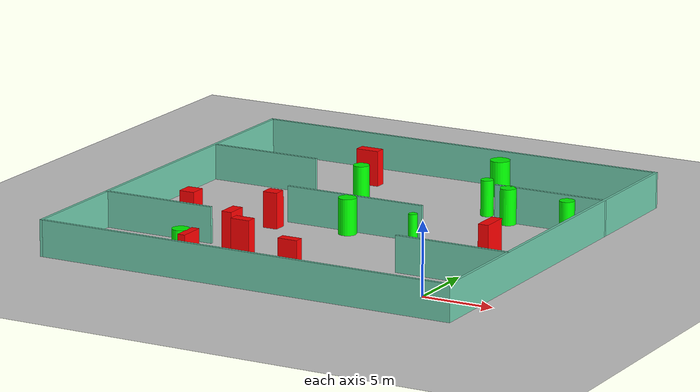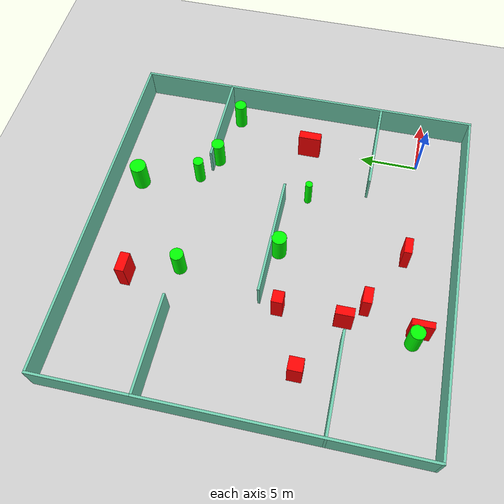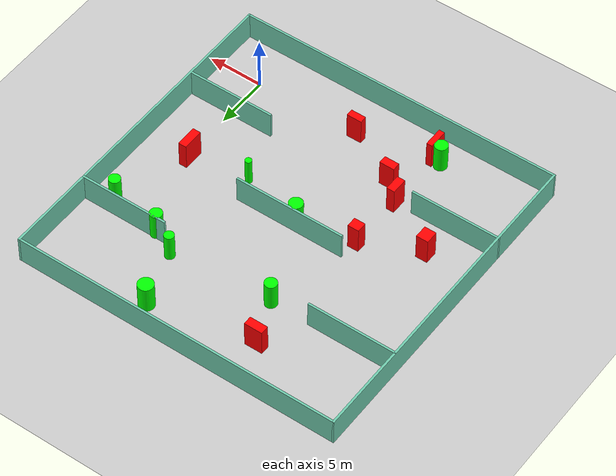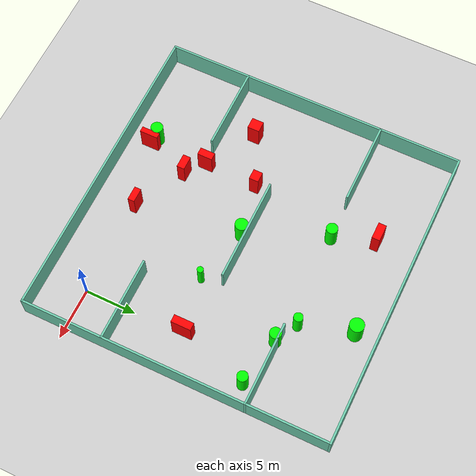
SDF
<sdf version="1.7">
 <world name="default">
  <light name="sun" type="directional">
   <pose>0 0 10 0 -0 0</pose>
   <diffuse>0.8 0.8 0.8 1</diffuse>
   <specular>0.2 0.2 0.2 1</specular>
   <attenuation>
    <range>1000</range>
    <constant>0.9</constant>
    <linear>0.01</linear>
    <quadratic>0.001</quadratic>
   </attenuation>
   <direction>-0.5 0.1 -0.9</direction>
   <spot><inner_angle>0</inner_angle><outer_angle>0</outer_angle><falloff>0</falloff></spot>
  </light>
  <model name="ground_plane">
   <static>1</static>
   <link name="link">
    <collision name="collision">
     <geometry><plane><normal>0 0 1</normal><size>100 100</size></plane></geometry>
     <surface>
      <contact><collide_bitmask>65535</collide_bitmask></contact>
      <friction><ode><mu>100</mu><mu2>50</mu2></ode></friction>
     </surface>
    </collision>
    <visual name="visual">
     <cast_shadows>0</cast_shadows>
     <geometry><plane><normal>0 0 1</normal><size>100 100</size></plane></geometry>
     <material>
      <script><uri>file://media/materials/scripts/gazebo.material</uri><name>Gazebo/Grey</name></script>
     </material>
    </visual>
   </link>
  </model>
  <gravity>0 0 -9.8</gravity>
  <magnetic_field>6e-06 2.3e-05 -4.2e-05</magnetic_field>
  <atmosphere type="adiabatic"/>
  <physics type="ode">
   <max_step_size>0.001</max_step_size>
   <real_time_factor>1</real_time_factor>
   <real_time_update_rate>1000</real_time_update_rate>
  </physics>
  <scene><ambient>0.4 0.4 0.4 1</ambient><background>0.7 0.7 0.7 1</background><shadows>1</shadows></scene>
  <spherical_coordinates>
   <surface_model>EARTH_WGS84</surface_model>
   <latitude_deg>0</latitude_deg>
   <longitude_deg>0</longitude_deg>
   <elevation>0</elevation>
   <heading_deg>0</heading_deg>
  </spherical_coordinates>
  <model name="my_base_walls">
   <link name="Wall_10">
    <collision name="Wall_10_Collision">
     <geometry><box><size>8.2 0.2 2.5</size></box></geometry>
     <pose>0 0 1.25 0 -0 0</pose>
    </collision>
    <visual name="Wall_10_Visual">
     <pose>0 0 1.25 0 -0 0</pose>
     <geometry><box><size>8.2 0.2 2.5</size></box></geometry>
     <material>
      <script><uri>file://media/materials/scripts/gazebo.material</uri><name>Gazebo/Grey</name></script>
      <ambient>0.435294 0.796078 0.67451 1</ambient>
     </material>
     <meta><layer>0</layer></meta>
    </visual>
    <pose>-11 -7 0 0 -0 0</pose>
   </link>
   <link name="Wall_12">
    <collision name="Wall_12_Collision">
     <geometry><box><size>8.2 0.2 2.5</size></box></geometry>
     <pose>0 0 1.25 0 -0 0</pose>
    </collision>
    <visual name="Wall_12_Visual">
     <pose>0 0 1.25 0 -0 0</pose>
     <geometry><box><size>8.2 0.2 2.5</size></box></geometry>
     <material>
      <script><uri>file://media/materials/scripts/gazebo.material</uri><name>Gazebo/Grey</name></script>
      <ambient>0.435294 0.796078 0.67451 1</ambient>
     </material>
     <meta><layer>0</layer></meta>
    </visual>
    <pose>-11 7 0 0 -0 0</pose>
   </link>
   <link name="Wall_14">
    <collision name="Wall_14_Collision">
     <geometry><box><size>8.2 0.2 2.5</size></box></geometry>
     <pose>0 0 1.25 0 -0 0</pose>
    </collision>
    <visual name="Wall_14_Visual">
     <pose>0 0 1.25 0 -0 0</pose>
     <geometry><box><size>8.2 0.2 2.5</size></box></geometry>
     <material>
      <script><uri>file://media/materials/scripts/gazebo.material</uri><name>Gazebo/Grey</name></script>
      <ambient>0.435294 0.796078 0.67451 1</ambient>
     </material>
     <meta><layer>0</layer></meta>
    </visual>
    <pose>11 7 0 0 -0 3.14159</pose>
   </link>
   <link name="Wall_16">
    <collision name="Wall_16_Collision">
     <geometry><box><size>10.2 0.2 2.5</size></box></geometry>
     <pose>0 0 1.25 0 -0 0</pose>
    </collision>
    <visual name="Wall_16_Visual">
     <pose>0 0 1.25 0 -0 0</pose>
     <geometry><box><size>10.2 0.2 2.5</size></box></geometry>
     <material>
      <script><uri>file://media/materials/scripts/gazebo.material</uri><name>Gazebo/Grey</name></script>
      <ambient>0.435294 0.796078 0.67451 1</ambient>
     </material>
     <meta><layer>0</layer></meta>
    </visual>
    <pose>0 0 0 0 -0 3.14159</pose>
   </link>
   <link name="Wall_2">
    <collision name="Wall_2_Collision">
     <geometry><box><size>30.2 0.2 2.5</size></box></geometry>
     <pose>0 0 1.25 0 -0 0</pose>
    </collision>
    <visual name="Wall_2_Visual">
     <pose>0 0 1.25 0 -0 0</pose>
     <geometry><box><size>30.2 0.2 2.5</size></box></geometry>
     <material>
      <script><uri>file://media/materials/scripts/gazebo.material</uri><name>Gazebo/Grey</name></script>
      <ambient>0.435294 0.796078 0.67451 1</ambient>
     </material>
     <meta><layer>0</layer></meta>
    </visual>
    <pose>0 -15 0 0 -0 3.14159</pose>
   </link>
   <link name="Wall_3">
    <collision name="Wall_3_Collision">
     <geometry><box><size>30.2 0.2 2.5</size></box></geometry>
     <pose>0 0 1.25 0 -0 0</pose>
    </collision>
    <visual name="Wall_3_Visual">
     <pose>0 0 1.25 0 -0 0</pose>
     <geometry><box><size>30.2 0.2 2.5</size></box></geometry>
     <material>
      <script><uri>file://media/materials/scripts/gazebo.material</uri><name>Gazebo/Grey</name></script>
      <ambient>0.435294 0.796078 0.67451 1</ambient>
     </material>
     <meta><layer>0</layer></meta>
    </visual>
    <pose>-15 0 0 0 -0 1.5708</pose>
   </link>
   <link name="Wall_4">
    <collision name="Wall_4_Collision">
     <geometry><box><size>30.2 0.2 2.5</size></box></geometry>
     <pose>0 0 1.25 0 -0 0</pose>
    </collision>
    <visual name="Wall_4_Visual">
     <pose>0 0 1.25 0 -0 0</pose>
     <geometry><box><size>30.2 0.2 2.5</size></box></geometry>
     <material>
      <script><uri>file://media/materials/scripts/gazebo.material</uri><name>Gazebo/Grey</name></script>
      <ambient>0.435294 0.796078 0.67451 1</ambient>
     </material>
     <meta><layer>0</layer></meta>
    </visual>
    <pose>0 15 0 0 -0 0</pose>
   </link>
   <link name="Wall_6">
    <collision name="Wall_6_Collision">
     <geometry><box><size>30.2 0.2 2.5</size></box></geometry>
     <pose>0 0 1.25 0 -0 0</pose>
    </collision>
    <visual name="Wall_6_Visual">
     <pose>0 0 1.25 0 -0 0</pose>
     <geometry><box><size>30.2 0.2 2.5</size></box></geometry>
     <material>
      <script><uri>file://media/materials/scripts/gazebo.material</uri><name>Gazebo/Grey</name></script>
      <ambient>0.435294 0.796078 0.67451 1</ambient>
     </material>
     <meta><layer>0</layer></meta>
    </visual>
    <pose>15 0 0 0 -0 1.5708</pose>
   </link>
   <link name="Wall_8">
    <collision name="Wall_8_Collision">
     <geometry><box><size>8.2 0.2 2.5</size></box></geometry>
     <pose>0 0 1.25 0 -0 0</pose>
    </collision>
    <visual name="Wall_8_Visual">
     <pose>0 0 1.25 0 -0 0</pose>
     <geometry><box><size>8.2 0.2 2.5</size></box></geometry>
     <material>
      <script><uri>file://media/materials/scripts/gazebo.material</uri><name>Gazebo/Grey</name></script>
      <ambient>0.435294 0.796078 0.67451 1</ambient>
     </material>
     <meta><layer>0</layer></meta>
    </visual>
    <pose>11 -7 0 0 -0 3.14159</pose>
   </link>
   <static>1</static>
   <pose>-11 11 0 0 -0 0</pose>
  </model>
  <model name="cylinder1">
   <static>1</static>
   <link name="link">
    <inertial>
     <mass>1</mass>
     <inertia><ixx>0.5</ixx><ixy>0</ixy><ixz>0</ixz><iyy>0.5</iyy><iyz>0</iyz><izz>1</izz></inertia>
    </inertial>
    <collision name="collision">
     <geometry><cylinder><radius>0.44315635912774565</radius><length>2.5</length></cylinder></geometry>
    </collision>
    <visual name="visual">
     <geometry><cylinder><radius>0.44315635912774565</radius><length>2.5</length></cylinder></geometry>
     <material>
      <ambient>0 1 0 1</ambient>
      <diffuse>0 1 0 1</diffuse>
      <specular>0.1 0.1 0.1 1</specular>
      <emissive>0 0 0 0</emissive>
     </material>
    </visual>
   </link>
   <pose>-5.148137849979319 18.847649474996906 1.25 0 0 0</pose>
  </model>
  <model name="cylinder2">
   <static>1</static>
   <link name="link">
    <inertial>
     <mass>1</mass>
     <inertia><ixx>0.5</ixx><ixy>0</ixy><ixz>0</ixz><iyy>0.5</iyy><iyz>0</iyz><izz>1</izz></inertia>
    </inertial>
    <collision name="collision">
     <geometry><cylinder><radius>0.5210041241242489</radius><length>2.5</length></cylinder></geometry>
    </collision>
    <visual name="visual">
     <geometry><cylinder><radius>0.5210041241242489</radius><length>2.5</length></cylinder></geometry>
     <material>
      <ambient>0 1 0 1</ambient>
      <diffuse>0 1 0 1</diffuse>
      <specular>0.1 0.1 0.1 1</specular>
      <emissive>0 0 0 0</emissive>
     </material>
    </visual>
   </link>
   <pose>1.8893018856757813 16.745328308252624 1.25 0 0 0</pose>
  </model>
  <model name="cylinder3">
   <static>1</static>
   <link name="link">
    <inertial>
     <mass>1</mass>
     <inertia><ixx>0.5</ixx><ixy>0</ixy><ixz>0</ixz><iyy>0.5</iyy><iyz>0</iyz><izz>1</izz></inertia>
    </inertial>
    <collision name="collision">
     <geometry><cylinder><radius>0.5603543382615417</radius><length>2.5</length></cylinder></geometry>
    </collision>
    <visual name="visual">
     <geometry><cylinder><radius>0.5603543382615417</radius><length>2.5</length></cylinder></geometry>
     <material>
      <ambient>0 1 0 1</ambient>
      <diffuse>0 1 0 1</diffuse>
      <specular>0.1 0.1 0.1 1</specular>
      <emissive>0 0 0 0</emissive>
     </material>
    </visual>
   </link>
   <pose>-2.946954024509889 17.655970204674578 1.25 0 0 0</pose>
  </model>
  <model name="cylinder4">
   <static>1</static>
   <link name="link">
    <inertial>
     <mass>1</mass>
     <inertia><ixx>0.5</ixx><ixy>0</ixy><ixz>0</ixz><iyy>0.5</iyy><iyz>0</iyz><izz>1</izz></inertia>
    </inertial>
    <collision name="collision">
     <geometry><cylinder><radius>0.3042869393155815</radius><length>2.5</length></cylinder></geometry>
    </collision>
    <visual name="visual">
     <geometry><cylinder><radius>0.3042869393155815</radius><length>2.5</length></cylinder></geometry>
     <material>
      <ambient>0 1 0 1</ambient>
      <diffuse>0 1 0 1</diffuse>
      <specular>0.1 0.1 0.1 1</specular>
      <emissive>0 0 0 0</emissive>
     </material>
    </visual>
   </link>
   <pose>-5.513651965818159 8.972301004513822 1.25 0 0 0</pose>
  </model>
  <model name="cylinder5">
   <static>1</static>
   <link name="link">
    <inertial>
     <mass>1</mass>
     <inertia><ixx>0.5</ixx><ixy>0</ixy><ixz>0</ixz><iyy>0.5</iyy><iyz>0</iyz><izz>1</izz></inertia>
    </inertial>
    <collision name="collision">
     <geometry><cylinder><radius>0.5943857741182548</radius><length>2.5</length></cylinder></geometry>
    </collision>
    <visual name="visual">
     <geometry><cylinder><radius>0.5943857741182548</radius><length>2.5</length></cylinder></geometry>
     <material>
      <ambient>0 1 0 1</ambient>
      <diffuse>0 1 0 1</diffuse>
      <specular>0.1 0.1 0.1 1</specular>
      <emissive>0 0 0 0</emissive>
     </material>
    </visual>
   </link>
   <pose>-16.983232214901406 -1.3928377386412056 1.25 0 0 0</pose>
  </model>
  <model name="cylinder6">
   <static>1</static>
   <link name="link">
    <inertial>
     <mass>1</mass>
     <inertia><ixx>0.5</ixx><ixy>0</ixy><ixz>0</ixz><iyy>0.5</iyy><iyz>0</iyz><izz>1</izz></inertia>
    </inertial>
    <collision name="collision">
     <geometry><cylinder><radius>0.6966178053316152</radius><length>2.5</length></cylinder></geometry>
    </collision>
    <visual name="visual">
     <geometry><cylinder><radius>0.6966178053316152</radius><length>2.5</length></cylinder></geometry>
     <material>
      <ambient>0 1 0 1</ambient>
      <diffuse>0 1 0 1</diffuse>
      <specular>0.1 0.1 0.1 1</specular>
      <emissive>0 0 0 0</emissive>
     </material>
    </visual>
   </link>
   <pose>-6.706656898554204 23.81360514092887 1.25 0 0 0</pose>
  </model>
  <model name="cylinder7">
   <static>1</static>
   <link name="link">
    <inertial>
     <mass>1</mass>
     <inertia><ixx>0.5</ixx><ixy>0</ixy><ixz>0</ixz><iyy>0.5</iyy><iyz>0</iyz><izz>1</izz></inertia>
    </inertial>
    <collision name="collision">
     <geometry><cylinder><radius>0.6278709008395538</radius><length>2.5</length></cylinder></geometry>
    </collision>
    <visual name="visual">
     <geometry><cylinder><radius>0.6278709008395538</radius><length>2.5</length></cylinder></geometry>
     <material>
      <ambient>0 1 0 1</ambient>
      <diffuse>0 1 0 1</diffuse>
      <specular>0.1 0.1 0.1 1</specular>
      <emissive>0 0 0 0</emissive>
     </material>
    </visual>
   </link>
   <pose>-11.19774562237532 10.373059053750184 1.25 0 0 0</pose>
  </model>
  <model name="cylinder8">
   <static>1</static>
   <link name="link">
    <inertial>
     <mass>1</mass>
     <inertia><ixx>0.5</ixx><ixy>0</ixy><ixz>0</ixz><iyy>0.5</iyy><iyz>0</iyz><izz>1</izz></inertia>
    </inertial>
    <collision name="collision">
     <geometry><cylinder><radius>0.5555169675797875</radius><length>2.5</length></cylinder></geometry>
    </collision>
    <visual name="visual">
     <geometry><cylinder><radius>0.5555169675797875</radius><length>2.5</length></cylinder></geometry>
     <material>
      <ambient>0 1 0 1</ambient>
      <diffuse>0 1 0 1</diffuse>
      <specular>0.1 0.1 0.1 1</specular>
      <emissive>0 0 0 0</emissive>
     </material>
    </visual>
   </link>
   <pose>-14.39519098531338 18.043899982703792 1.25 0 0 0</pose>
  </model>
  <model name="box1">
   <static>1</static>
   <link name="link">
    <inertial>
     <mass>1</mass>
     <inertia><ixx>0.083</ixx><ixy>0</ixy><ixz>0</ixz><iyy>0.083</iyy><iyz>0</iyz><izz>0.083</izz></inertia>
    </inertial>
    <collision name="collision">
     <geometry><box><size>1.3683759223534564 0.7530267070822756 2.5</size></box></geometry>
    </collision>
    <visual name="visual">
     <geometry><box><size>1.3683759223534564 0.7530267070822756 2.5</size></box></geometry>
     <material>
      <ambient>1 0 0 1</ambient>
      <diffuse>1 0 0 1</diffuse>
      <specular>0.1 0.1 0.1 1</specular>
      <emissive>0 0 0 0</emissive>
     </material>
    </visual>
    <sensor name="my_contact" type="contact">
     <contact><collision>box_collision</collision><topic>__default_topic__</topic></contact>
    </sensor>
   </link>
   <pose>-14.72658145029927 2.6259446468403 1.25 0 0 0</pose>
  </model>
  <model name="box2">
   <static>1</static>
   <link name="link">
    <inertial>
     <mass>1</mass>
     <inertia><ixx>0.083</ixx><ixy>0</ixy><ixz>0</ixz><iyy>0.083</iyy><iyz>0</iyz><izz>0.083</izz></inertia>
    </inertial>
    <collision name="collision">
     <geometry><box><size>1.0297140327760945 0.918738817626612 2.5</size></box></geometry>
    </collision>
    <visual name="visual">
     <geometry><box><size>1.0297140327760945 0.918738817626612 2.5</size></box></geometry>
     <material>
      <ambient>1 0 0 1</ambient>
      <diffuse>1 0 0 1</diffuse>
      <specular>0.1 0.1 0.1 1</specular>
      <emissive>0 0 0 0</emissive>
     </material>
    </visual>
    <sensor name="my_contact" type="contact">
     <contact><collision>box_collision</collision><topic>__default_topic__</topic></contact>
    </sensor>
   </link>
   <pose>-16.33084900409805 9.394686350153252 1.25 0 0 0</pose>
  </model>
  <model name="box3">
   <static>1</static>
   <link name="link">
    <inertial>
     <mass>1</mass>
     <inertia><ixx>0.083</ixx><ixy>0</ixy><ixz>0</ixz><iyy>0.083</iyy><iyz>0</iyz><izz>0.083</izz></inertia>
    </inertial>
    <collision name="collision">
     <geometry><box><size>0.7444846343673026 1.9429498855390916 2.5</size></box></geometry>
    </collision>
    <visual name="visual">
     <geometry><box><size>0.7444846343673026 1.9429498855390916 2.5</size></box></geometry>
     <material>
      <ambient>1 0 0 1</ambient>
      <diffuse>1 0 0 1</diffuse>
      <specular>0.1 0.1 0.1 1</specular>
      <emissive>0 0 0 0</emissive>
     </material>
    </visual>
    <sensor name="my_contact" type="contact">
     <contact><collision>box_collision</collision><topic>__default_topic__</topic></contact>
    </sensor>
   </link>
   <pose>-0.2874243849330611 9.823425174361045 1.25 0 0 0</pose>
  </model>
  <model name="box4">
   <static>1</static>
   <link name="link">
    <inertial>
     <mass>1</mass>
     <inertia><ixx>0.083</ixx><ixy>0</ixy><ixz>0</ixz><iyy>0.083</iyy><iyz>0</iyz><izz>0.083</izz></inertia>
    </inertial>
    <collision name="collision">
     <geometry><box><size>1.0907607618320192 1.167172158269329 2.5</size></box></geometry>
    </collision>
    <visual name="visual">
     <geometry><box><size>1.0907607618320192 1.167172158269329 2.5</size></box></geometry>
     <material>
      <ambient>1 0 0 1</ambient>
      <diffuse>1 0 0 1</diffuse>
      <specular>0.1 0.1 0.1 1</specular>
      <emissive>0 0 0 0</emissive>
     </material>
    </visual>
    <sensor name="my_contact" type="contact">
     <contact><collision>box_collision</collision><topic>__default_topic__</topic></contact>
    </sensor>
   </link>
   <pose>-21.29648105089199 7.0174334746220115 1.25 0 0 0</pose>
  </model>
  <model name="box5">
   <static>1</static>
   <link name="link">
    <inertial>
     <mass>1</mass>
     <inertia><ixx>0.083</ixx><ixy>0</ixy><ixz>0</ixz><iyy>0.083</iyy><iyz>0</iyz><izz>0.083</izz></inertia>
    </inertial>
    <collision name="collision">
     <geometry><box><size>0.5332680835939116 1.7957627484929468 2.5</size></box></geometry>
    </collision>
    <visual name="visual">
     <geometry><box><size>0.5332680835939116 1.7957627484929468 2.5</size></box></geometry>
     <material>
      <ambient>1 0 0 1</ambient>
      <diffuse>1 0 0 1</diffuse>
      <specular>0.1 0.1 0.1 1</specular>
      <emissive>0 0 0 0</emissive>
     </material>
    </visual>
    <sensor name="my_contact" type="contact">
     <contact><collision>box_collision</collision><topic>__default_topic__</topic></contact>
    </sensor>
   </link>
   <pose>-16.19438652885231 -1.7423427407288488 1.25 0 0 0</pose>
  </model>
  <model name="box6">
   <static>1</static>
   <link name="link">
    <inertial>
     <mass>1</mass>
     <inertia><ixx>0.083</ixx><ixy>0</ixy><ixz>0</ixz><iyy>0.083</iyy><iyz>0</iyz><izz>0.083</izz></inertia>
    </inertial>
    <collision name="collision">
     <geometry><box><size>1.396981325764924 0.6546147993943142 2.5</size></box></geometry>
    </collision>
    <visual name="visual">
     <geometry><box><size>1.396981325764924 0.6546147993943142 2.5</size></box></geometry>
     <material>
      <ambient>1 0 0 1</ambient>
      <diffuse>1 0 0 1</diffuse>
      <specular>0.1 0.1 0.1 1</specular>
      <emissive>0 0 0 0</emissive>
     </material>
    </visual>
    <sensor name="my_contact" type="contact">
     <contact><collision>box_collision</collision><topic>__default_topic__</topic></contact>
    </sensor>
   </link>
   <pose>-9.698950154872152 0.043847174764119146 1.25 0 0 0</pose>
  </model>
  <model name="box7">
   <static>1</static>
   <link name="link">
    <inertial>
     <mass>1</mass>
     <inertia><ixx>0.083</ixx><ixy>0</ixy><ixz>0</ixz><iyy>0.083</iyy><iyz>0</iyz><izz>0.083</izz></inertia>
    </inertial>
    <collision name="collision">
     <geometry><box><size>0.7304942555242138 1.4803157956068425 2.5</size></box></geometry>
    </collision>
    <visual name="visual">
     <geometry><box><size>0.7304942555242138 1.4803157956068425 2.5</size></box></geometry>
     <material>
      <ambient>1 0 0 1</ambient>
      <diffuse>1 0 0 1</diffuse>
      <specular>0.1 0.1 0.1 1</specular>
      <emissive>0 0 0 0</emissive>
     </material>
    </visual>
    <sensor name="my_contact" type="contact">
     <contact><collision>box_collision</collision><topic>__default_topic__</topic></contact>
    </sensor>
   </link>
   <pose>-16.42460800710095 4.151958076445112 1.25 0 0 0</pose>
  </model>
  <model name="box8">
   <static>1</static>
   <link name="link">
    <inertial>
     <mass>1</mass>
     <inertia><ixx>0.083</ixx><ixy>0</ixy><ixz>0</ixz><iyy>0.083</iyy><iyz>0</iyz><izz>0.083</izz></inertia>
    </inertial>
    <collision name="collision">
     <geometry><box><size>1.6558320881420046 0.7810520412683035 2.5</size></box></geometry>
    </collision>
    <visual name="visual">
     <geometry><box><size>1.6558320881420046 0.7810520412683035 2.5</size></box></geometry>
     <material>
      <ambient>1 0 0 1</ambient>
      <diffuse>1 0 0 1</diffuse>
      <specular>0.1 0.1 0.1 1</specular>
      <emissive>0 0 0 0</emissive>
     </material>
    </visual>
    <sensor name="my_contact" type="contact">
     <contact><collision>box_collision</collision><topic>__default_topic__</topic></contact>
    </sensor>
   </link>
   <pose>-15.945168935130505 22.064604413494187 1.25 0 0 0</pose>
  </model>
 </world>
</sdf>
